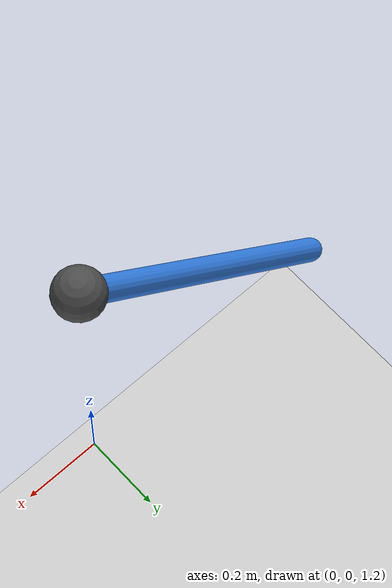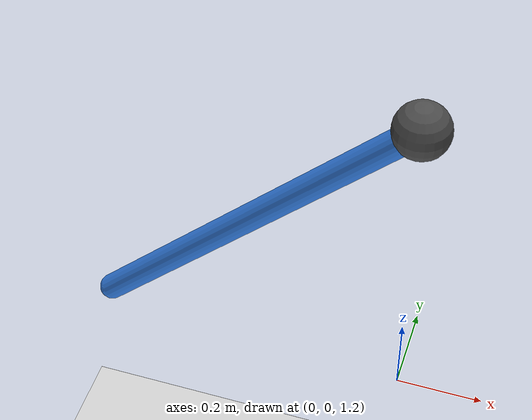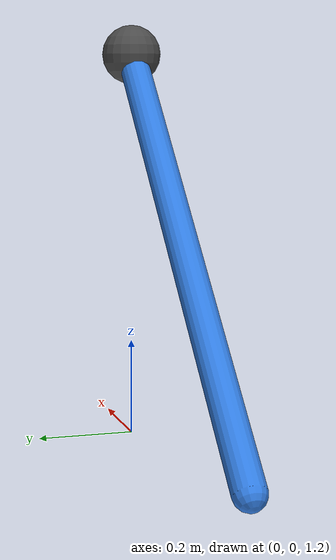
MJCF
<mujoco model="pendulo">
    <!-- Ângulos do XML em graus -->
    <compiler angle="degree"/>

    <!-- Gravidade g = (gx,gy,gz) e step de simulação de 1 ms -->
    <option gravity="0 0 -9.81" timestep="0.001"/>

    <worldbody>
        <!-- Luz para iluminar os objetos-->
        <light pos="0 -2 4"/>

        <!-- Chão -->
        <geom name="chao"
              type="plane"
              size="3 3 0.1"
              rgba="0.8 0.8 0.8 1"/>

        <!-- Suporte fixo, a 2 metros do chão, com raio de 6cm, grupo de colisão 0,
        colide com grupo 0 -->
        <geom name="suporte"
              type="sphere"
              pos="0 0 2"
              size="0.06"
              contype="0"
              conaffinity="0"
              rgba="0.3 0.3 0.3 1"/>

        <!-- Barra inicialmente inclinada 45 graus -->
        <body name="pendulo" pos="0 0 2" euler="0 45 0">

            <!-- Articulação: permite rodar em torno do eixo y,
            binário que se opõe à velocidade de rotação tau=-b dθ -->
            <joint name="articulacao"
                   type="hinge"
                   axis="0 1 0"
                   damping="0.05"/>

            <!-- Barra com 1 metro de comprimento entre extremos,
                 raio de 3 cm e massa de 1 kg
                 Primeiro ponto (0, 0, 0); Segundo ponto (0, 0, -1)-->
            <geom name="barra"
                  type="capsule"
                  fromto="0 0 0 0 0 -1"
                  size="0.03"
                  mass="1"
                  rgba="0.2 0.5 0.9 1"/>
        </body>
    </worldbody>
</mujoco>
